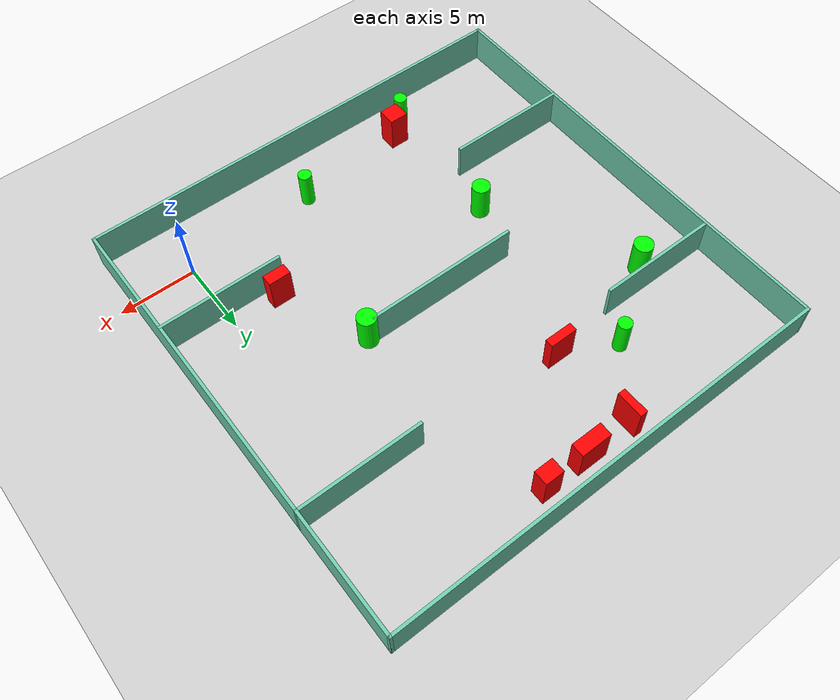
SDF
<sdf version="1.7">
 <world name="default">
  <light name="sun" type="directional">
   <pose>0 0 10 0 -0 0</pose>
   <diffuse>0.8 0.8 0.8 1</diffuse>
   <specular>0.2 0.2 0.2 1</specular>
   <attenuation>
    <range>1000</range>
    <constant>0.9</constant>
    <linear>0.01</linear>
    <quadratic>0.001</quadratic>
   </attenuation>
   <direction>-0.5 0.1 -0.9</direction>
   <spot><inner_angle>0</inner_angle><outer_angle>0</outer_angle><falloff>0</falloff></spot>
  </light>
  <model name="ground_plane">
   <static>1</static>
   <link name="link">
    <collision name="collision">
     <geometry><plane><normal>0 0 1</normal><size>100 100</size></plane></geometry>
     <surface>
      <contact><collide_bitmask>65535</collide_bitmask></contact>
      <friction><ode><mu>100</mu><mu2>50</mu2></ode></friction>
     </surface>
    </collision>
    <visual name="visual">
     <cast_shadows>0</cast_shadows>
     <geometry><plane><normal>0 0 1</normal><size>100 100</size></plane></geometry>
     <material>
      <script><uri>file://media/materials/scripts/gazebo.material</uri><name>Gazebo/Grey</name></script>
     </material>
    </visual>
   </link>
  </model>
  <gravity>0 0 -9.8</gravity>
  <magnetic_field>6e-06 2.3e-05 -4.2e-05</magnetic_field>
  <atmosphere type="adiabatic"/>
  <physics type="ode">
   <max_step_size>0.001</max_step_size>
   <real_time_factor>1</real_time_factor>
   <real_time_update_rate>1000</real_time_update_rate>
  </physics>
  <scene><ambient>0.4 0.4 0.4 1</ambient><background>0.7 0.7 0.7 1</background><shadows>1</shadows></scene>
  <spherical_coordinates>
   <surface_model>EARTH_WGS84</surface_model>
   <latitude_deg>0</latitude_deg>
   <longitude_deg>0</longitude_deg>
   <elevation>0</elevation>
   <heading_deg>0</heading_deg>
  </spherical_coordinates>
  <model name="my_base_walls">
   <link name="Wall_10">
    <collision name="Wall_10_Collision">
     <geometry><box><size>8.2 0.2 2.5</size></box></geometry>
     <pose>0 0 1.25 0 -0 0</pose>
    </collision>
    <visual name="Wall_10_Visual">
     <pose>0 0 1.25 0 -0 0</pose>
     <geometry><box><size>8.2 0.2 2.5</size></box></geometry>
     <material>
      <script><uri>file://media/materials/scripts/gazebo.material</uri><name>Gazebo/Grey</name></script>
      <ambient>0.435294 0.796078 0.67451 1</ambient>
     </material>
     <meta><layer>0</layer></meta>
    </visual>
    <pose>-11 -7 0 0 -0 0</pose>
   </link>
   <link name="Wall_12">
    <collision name="Wall_12_Collision">
     <geometry><box><size>8.2 0.2 2.5</size></box></geometry>
     <pose>0 0 1.25 0 -0 0</pose>
    </collision>
    <visual name="Wall_12_Visual">
     <pose>0 0 1.25 0 -0 0</pose>
     <geometry><box><size>8.2 0.2 2.5</size></box></geometry>
     <material>
      <script><uri>file://media/materials/scripts/gazebo.material</uri><name>Gazebo/Grey</name></script>
      <ambient>0.435294 0.796078 0.67451 1</ambient>
     </material>
     <meta><layer>0</layer></meta>
    </visual>
    <pose>-11 7 0 0 -0 0</pose>
   </link>
   <link name="Wall_14">
    <collision name="Wall_14_Collision">
     <geometry><box><size>8.2 0.2 2.5</size></box></geometry>
     <pose>0 0 1.25 0 -0 0</pose>
    </collision>
    <visual name="Wall_14_Visual">
     <pose>0 0 1.25 0 -0 0</pose>
     <geometry><box><size>8.2 0.2 2.5</size></box></geometry>
     <material>
      <script><uri>file://media/materials/scripts/gazebo.material</uri><name>Gazebo/Grey</name></script>
      <ambient>0.435294 0.796078 0.67451 1</ambient>
     </material>
     <meta><layer>0</layer></meta>
    </visual>
    <pose>11 7 0 0 -0 3.14159</pose>
   </link>
   <link name="Wall_16">
    <collision name="Wall_16_Collision">
     <geometry><box><size>10.2 0.2 2.5</size></box></geometry>
     <pose>0 0 1.25 0 -0 0</pose>
    </collision>
    <visual name="Wall_16_Visual">
     <pose>0 0 1.25 0 -0 0</pose>
     <geometry><box><size>10.2 0.2 2.5</size></box></geometry>
     <material>
      <script><uri>file://media/materials/scripts/gazebo.material</uri><name>Gazebo/Grey</name></script>
      <ambient>0.435294 0.796078 0.67451 1</ambient>
     </material>
     <meta><layer>0</layer></meta>
    </visual>
    <pose>0 0 0 0 -0 3.14159</pose>
   </link>
   <link name="Wall_2">
    <collision name="Wall_2_Collision">
     <geometry><box><size>30.2 0.2 2.5</size></box></geometry>
     <pose>0 0 1.25 0 -0 0</pose>
    </collision>
    <visual name="Wall_2_Visual">
     <pose>0 0 1.25 0 -0 0</pose>
     <geometry><box><size>30.2 0.2 2.5</size></box></geometry>
     <material>
      <script><uri>file://media/materials/scripts/gazebo.material</uri><name>Gazebo/Grey</name></script>
      <ambient>0.435294 0.796078 0.67451 1</ambient>
     </material>
     <meta><layer>0</layer></meta>
    </visual>
    <pose>0 -15 0 0 -0 3.14159</pose>
   </link>
   <link name="Wall_3">
    <collision name="Wall_3_Collision">
     <geometry><box><size>30.2 0.2 2.5</size></box></geometry>
     <pose>0 0 1.25 0 -0 0</pose>
    </collision>
    <visual name="Wall_3_Visual">
     <pose>0 0 1.25 0 -0 0</pose>
     <geometry><box><size>30.2 0.2 2.5</size></box></geometry>
     <material>
      <script><uri>file://media/materials/scripts/gazebo.material</uri><name>Gazebo/Grey</name></script>
      <ambient>0.435294 0.796078 0.67451 1</ambient>
     </material>
     <meta><layer>0</layer></meta>
    </visual>
    <pose>-15 0 0 0 -0 1.5708</pose>
   </link>
   <link name="Wall_4">
    <collision name="Wall_4_Collision">
     <geometry><box><size>30.2 0.2 2.5</size></box></geometry>
     <pose>0 0 1.25 0 -0 0</pose>
    </collision>
    <visual name="Wall_4_Visual">
     <pose>0 0 1.25 0 -0 0</pose>
     <geometry><box><size>30.2 0.2 2.5</size></box></geometry>
     <material>
      <script><uri>file://media/materials/scripts/gazebo.material</uri><name>Gazebo/Grey</name></script>
      <ambient>0.435294 0.796078 0.67451 1</ambient>
     </material>
     <meta><layer>0</layer></meta>
    </visual>
    <pose>0 15 0 0 -0 0</pose>
   </link>
   <link name="Wall_6">
    <collision name="Wall_6_Collision">
     <geometry><box><size>30.2 0.2 2.5</size></box></geometry>
     <pose>0 0 1.25 0 -0 0</pose>
    </collision>
    <visual name="Wall_6_Visual">
     <pose>0 0 1.25 0 -0 0</pose>
     <geometry><box><size>30.2 0.2 2.5</size></box></geometry>
     <material>
      <script><uri>file://media/materials/scripts/gazebo.material</uri><name>Gazebo/Grey</name></script>
      <ambient>0.435294 0.796078 0.67451 1</ambient>
     </material>
     <meta><layer>0</layer></meta>
    </visual>
    <pose>15 0 0 0 -0 1.5708</pose>
   </link>
   <link name="Wall_8">
    <collision name="Wall_8_Collision">
     <geometry><box><size>8.2 0.2 2.5</size></box></geometry>
     <pose>0 0 1.25 0 -0 0</pose>
    </collision>
    <visual name="Wall_8_Visual">
     <pose>0 0 1.25 0 -0 0</pose>
     <geometry><box><size>8.2 0.2 2.5</size></box></geometry>
     <material>
      <script><uri>file://media/materials/scripts/gazebo.material</uri><name>Gazebo/Grey</name></script>
      <ambient>0.435294 0.796078 0.67451 1</ambient>
     </material>
     <meta><layer>0</layer></meta>
    </visual>
    <pose>11 -7 0 0 -0 3.14159</pose>
   </link>
   <static>1</static>
   <pose>-11 11 0 0 -0 0</pose>
  </model>
  <model name="cylinder1">
   <static>1</static>
   <link name="link">
    <inertial>
     <mass>1</mass>
     <inertia><ixx>0.5</ixx><ixy>0</ixy><ixz>0</ixz><iyy>0.5</iyy><iyz>0</iyz><izz>1</izz></inertia>
    </inertial>
    <collision name="collision">
     <geometry><cylinder><radius>0.44726468147646886</radius><length>2.5</length></cylinder></geometry>
    </collision>
    <visual name="visual">
     <geometry><cylinder><radius>0.44726468147646886</radius><length>2.5</length></cylinder></geometry>
     <material>
      <ambient>0 1 0 1</ambient>
      <diffuse>0 1 0 1</diffuse>
      <specular>0.1 0.1 0.1 1</specular>
      <emissive>0 0 0 0</emissive>
     </material>
    </visual>
   </link>
   <pose>-17.055023892904664 20.189992861075066 1.25 0 0 0</pose>
  </model>
  <model name="cylinder2">
   <static>1</static>
   <link name="link">
    <inertial>
     <mass>1</mass>
     <inertia><ixx>0.5</ixx><ixy>0</ixy><ixz>0</ixz><iyy>0.5</iyy><iyz>0</iyz><izz>1</izz></inertia>
    </inertial>
    <collision name="collision">
     <geometry><cylinder><radius>0.5938209053093328</radius><length>2.5</length></cylinder></geometry>
    </collision>
    <visual name="visual">
     <geometry><cylinder><radius>0.5938209053093328</radius><length>2.5</length></cylinder></geometry>
     <material>
      <ambient>0 1 0 1</ambient>
      <diffuse>0 1 0 1</diffuse>
      <specular>0.1 0.1 0.1 1</specular>
      <emissive>0 0 0 0</emissive>
     </material>
    </visual>
   </link>
   <pose>-17.044038260312952 7.228602195605806 1.25 0 0 0</pose>
  </model>
  <model name="cylinder3">
   <static>1</static>
   <link name="link">
    <inertial>
     <mass>1</mass>
     <inertia><ixx>0.5</ixx><ixy>0</ixy><ixz>0</ixz><iyy>0.5</iyy><iyz>0</iyz><izz>1</izz></inertia>
    </inertial>
    <collision name="collision">
     <geometry><cylinder><radius>0.4370063295168909</radius><length>2.5</length></cylinder></geometry>
    </collision>
    <visual name="visual">
     <geometry><cylinder><radius>0.4370063295168909</radius><length>2.5</length></cylinder></geometry>
     <material>
      <ambient>0 1 0 1</ambient>
      <diffuse>0 1 0 1</diffuse>
      <specular>0.1 0.1 0.1 1</specular>
      <emissive>0 0 0 0</emissive>
     </material>
    </visual>
   </link>
   <pose>-17.659381560652864 -2.055924670805374 1.25 0 0 0</pose>
  </model>
  <model name="cylinder4">
   <static>1</static>
   <link name="link">
    <inertial>
     <mass>1</mass>
     <inertia><ixx>0.5</ixx><ixy>0</ixy><ixz>0</ixz><iyy>0.5</iyy><iyz>0</iyz><izz>1</izz></inertia>
    </inertial>
    <collision name="collision">
     <geometry><cylinder><radius>0.4382578873259691</radius><length>2.5</length></cylinder></geometry>
    </collision>
    <visual name="visual">
     <geometry><cylinder><radius>0.4382578873259691</radius><length>2.5</length></cylinder></geometry>
     <material>
      <ambient>0 1 0 1</ambient>
      <diffuse>0 1 0 1</diffuse>
      <specular>0.1 0.1 0.1 1</specular>
      <emissive>0 0 0 0</emissive>
     </material>
    </visual>
   </link>
   <pose>-8.85710968382202 -0.3976806232297596 1.25 0 0 0</pose>
  </model>
  <model name="cylinder5">
   <static>1</static>
   <link name="link">
    <inertial>
     <mass>1</mass>
     <inertia><ixx>0.5</ixx><ixy>0</ixy><ixz>0</ixz><iyy>0.5</iyy><iyz>0</iyz><izz>1</izz></inertia>
    </inertial>
    <collision name="collision">
     <geometry><cylinder><radius>0.6255195545450065</radius><length>2.5</length></cylinder></geometry>
    </collision>
    <visual name="visual">
     <geometry><cylinder><radius>0.6255195545450065</radius><length>2.5</length></cylinder></geometry>
     <material>
      <ambient>0 1 0 1</ambient>
      <diffuse>0 1 0 1</diffuse>
      <specular>0.1 0.1 0.1 1</specular>
      <emissive>0 0 0 0</emissive>
     </material>
    </visual>
   </link>
   <pose>-5.668075624796156 10.718057777696842 1.25 0 0 0</pose>
  </model>
  <model name="cylinder6">
   <static>1</static>
   <link name="link">
    <inertial>
     <mass>1</mass>
     <inertia><ixx>0.5</ixx><ixy>0</ixy><ixz>0</ixz><iyy>0.5</iyy><iyz>0</iyz><izz>1</izz></inertia>
    </inertial>
    <collision name="collision">
     <geometry><cylinder><radius>0.6245626342894524</radius><length>2.5</length></cylinder></geometry>
    </collision>
    <visual name="visual">
     <geometry><cylinder><radius>0.6245626342894524</radius><length>2.5</length></cylinder></geometry>
     <material>
      <ambient>0 1 0 1</ambient>
      <diffuse>0 1 0 1</diffuse>
      <specular>0.1 0.1 0.1 1</specular>
      <emissive>0 0 0 0</emissive>
     </material>
    </visual>
   </link>
   <pose>-21.85102060961738 16.81650316612782 1.25 0 0 0</pose>
  </model>
  <model name="box1">
   <static>1</static>
   <link name="link">
    <inertial>
     <mass>1</mass>
     <inertia><ixx>0.083</ixx><ixy>0</ixy><ixz>0</ixz><iyy>0.083</iyy><iyz>0</iyz><izz>0.083</izz></inertia>
    </inertial>
    <collision name="collision">
     <geometry><box><size>1.467383124297638 0.7671696242051975 2.5</size></box></geometry>
    </collision>
    <visual name="visual">
     <geometry><box><size>1.467383124297638 0.7671696242051975 2.5</size></box></geometry>
     <material>
      <ambient>1 0 0 1</ambient>
      <diffuse>1 0 0 1</diffuse>
      <specular>0.1 0.1 0.1 1</specular>
      <emissive>0 0 0 0</emissive>
     </material>
    </visual>
    <sensor name="my_contact" type="contact">
     <contact><collision>box_collision</collision><topic>__default_topic__</topic></contact>
    </sensor>
   </link>
   <pose>-3.2419799177628335 5.022186260378076 1.25 0 0 0</pose>
  </model>
  <model name="box2">
   <static>1</static>
   <link name="link">
    <inertial>
     <mass>1</mass>
     <inertia><ixx>0.083</ixx><ixy>0</ixy><ixz>0</ixz><iyy>0.083</iyy><iyz>0</iyz><izz>0.083</izz></inertia>
    </inertial>
    <collision name="collision">
     <geometry><box><size>1.2534769958477647 0.9625718648916893 2.5</size></box></geometry>
    </collision>
    <visual name="visual">
     <geometry><box><size>1.2534769958477647 0.9625718648916893 2.5</size></box></geometry>
     <material>
      <ambient>1 0 0 1</ambient>
      <diffuse>1 0 0 1</diffuse>
      <specular>0.1 0.1 0.1 1</specular>
      <emissive>0 0 0 0</emissive>
     </material>
    </visual>
    <sensor name="my_contact" type="contact">
     <contact><collision>box_collision</collision><topic>__default_topic__</topic></contact>
    </sensor>
   </link>
   <pose>-7.554890178967012 24.357026400781248 1.25 0 0 0</pose>
  </model>
  <model name="box3">
   <static>1</static>
   <link name="link">
    <inertial>
     <mass>1</mass>
     <inertia><ixx>0.083</ixx><ixy>0</ixy><ixz>0</ixz><iyy>0.083</iyy><iyz>0</iyz><izz>0.083</izz></inertia>
    </inertial>
    <collision name="collision">
     <geometry><box><size>1.2726442824285729 1.218096464629752 2.5</size></box></geometry>
    </collision>
    <visual name="visual">
     <geometry><box><size>1.2726442824285729 1.218096464629752 2.5</size></box></geometry>
     <material>
      <ambient>1 0 0 1</ambient>
      <diffuse>1 0 0 1</diffuse>
      <specular>0.1 0.1 0.1 1</specular>
      <emissive>0 0 0 0</emissive>
     </material>
    </visual>
    <sensor name="my_contact" type="contact">
     <contact><collision>box_collision</collision><topic>__default_topic__</topic></contact>
    </sensor>
   </link>
   <pose>-16.489057403277243 -1.2077362696176532 1.25 0 0 0</pose>
  </model>
  <model name="box4">
   <static>1</static>
   <link name="link">
    <inertial>
     <mass>1</mass>
     <inertia><ixx>0.083</ixx><ixy>0</ixy><ixz>0</ixz><iyy>0.083</iyy><iyz>0</iyz><izz>0.083</izz></inertia>
    </inertial>
    <collision name="collision">
     <geometry><box><size>1.8367597752968046 0.554219659369585 2.5</size></box></geometry>
    </collision>
    <visual name="visual">
     <geometry><box><size>1.8367597752968046 0.554219659369585 2.5</size></box></geometry>
     <material>
      <ambient>1 0 0 1</ambient>
      <diffuse>1 0 0 1</diffuse>
      <specular>0.1 0.1 0.1 1</specular>
      <emissive>0 0 0 0</emissive>
     </material>
    </visual>
    <sensor name="my_contact" type="contact">
     <contact><collision>box_collision</collision><topic>__default_topic__</topic></contact>
    </sensor>
   </link>
   <pose>-13.628332532874085 18.517382378704195 1.25 0 0 0</pose>
  </model>
  <model name="box5">
   <static>1</static>
   <link name="link">
    <inertial>
     <mass>1</mass>
     <inertia><ixx>0.083</ixx><ixy>0</ixy><ixz>0</ixz><iyy>0.083</iyy><iyz>0</iyz><izz>0.083</izz></inertia>
    </inertial>
    <collision name="collision">
     <geometry><box><size>2.06879697504026 0.886488754494128 2.5</size></box></geometry>
    </collision>
    <visual name="visual">
     <geometry><box><size>2.06879697504026 0.886488754494128 2.5</size></box></geometry>
     <material>
      <ambient>1 0 0 1</ambient>
      <diffuse>1 0 0 1</diffuse>
      <specular>0.1 0.1 0.1 1</specular>
      <emissive>0 0 0 0</emissive>
     </material>
    </visual>
    <sensor name="my_contact" type="contact">
     <contact><collision>box_collision</collision><topic>__default_topic__</topic></contact>
    </sensor>
   </link>
   <pose>-10.539465898430116 24.38152620771696 1.25 0 0 0</pose>
  </model>
  <model name="box6">
   <static>1</static>
   <link name="link">
    <inertial>
     <mass>1</mass>
     <inertia><ixx>0.083</ixx><ixy>0</ixy><ixz>0</ixz><iyy>0.083</iyy><iyz>0</iyz><izz>0.083</izz></inertia>
    </inertial>
    <collision name="collision">
     <geometry><box><size>0.5156621734613654 1.7771088647941755 2.5</size></box></geometry>
    </collision>
    <visual name="visual">
     <geometry><box><size>0.5156621734613654 1.7771088647941755 2.5</size></box></geometry>
     <material>
      <ambient>1 0 0 1</ambient>
      <diffuse>1 0 0 1</diffuse>
      <specular>0.1 0.1 0.1 1</specular>
      <emissive>0 0 0 0</emissive>
     </material>
    </visual>
    <sensor name="my_contact" type="contact">
     <contact><collision>box_collision</collision><topic>__default_topic__</topic></contact>
    </sensor>
   </link>
   <pose>-13.792464985781491 24.137942044445946 1.25 0 0 0</pose>
  </model>
 </world>
</sdf>
